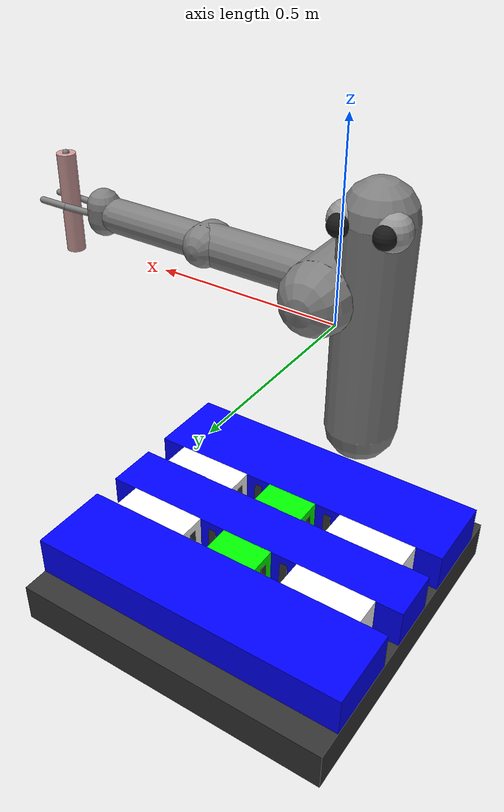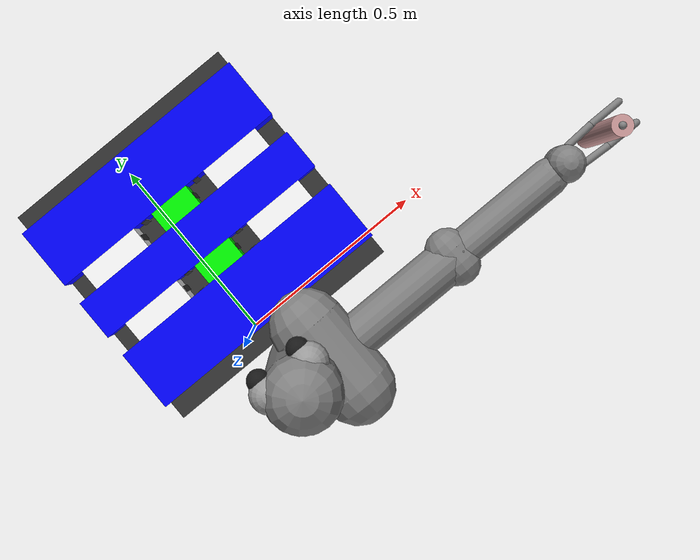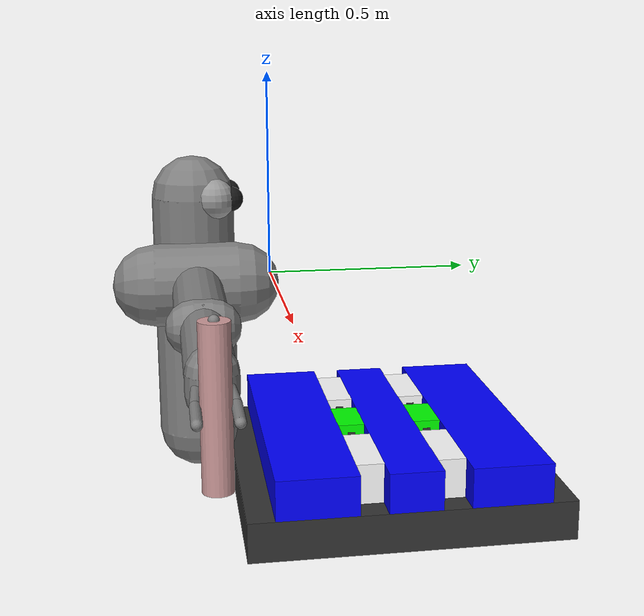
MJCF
<mujoco model="arm3d">

    <compiler inertiafromgeom="true" angle="radian" coordinate="local" />
    <option timestep="0.01" gravity="0 0 0" iterations="20" integrator="RK4" />
    <default>
        <joint armature="0.04" damping="1" limited="true" />
        <geom friction=".5 .1 .1" margin="0.002" condim="1" contype="0" conaffinity="0" />
    </default>

    <worldbody>
        <body name="r_shoulder_pan_link" pos="0 -0.188 0">
            <geom name="e1" type="sphere" rgba="0.6 0.6 0.6 1" pos="-0.06 0.05 0.2" size="0.05" />
            <geom name="e2" type="sphere" rgba="0.6 0.6 0.6 1" pos=" 0.06 0.05 0.2" size="0.05" />
            <geom name="e1p" type="sphere" rgba="0.1 0.1 0.1 1" pos="-0.06 0.09 0.2" size="0.03" />
            <geom name="e2p" type="sphere" rgba="0.1 0.1 0.1 1" pos=" 0.06 0.09 0.2" size="0.03" />
            <geom name="sp" type="capsule" fromto="0 0 -0.4 0 0 0.2" size="0.1" />
            <joint name="r_shoulder_pan_joint" type="hinge" pos="0 0 0" axis="0 0 1" range="-2.2854 1.714602" damping="10.0" />

            <body name="r_shoulder_lift_link" pos="0.1 0 0">
                <geom name="sl" type="capsule" fromto="0 -0.1 0 0 0.1 0" size="0.1" />
                <joint name="r_shoulder_lift_joint" type="hinge" pos="0 0 0" axis="0 1 0" range="-0.5236 1.3963" damping="10.0" />

                <body name="r_upper_arm_roll_link" pos="0 0 0">
                    <geom name="uar" type="capsule" fromto="-0.1 0 0 0.1 0 0" size="0.02" />
                    <joint name="r_upper_arm_roll_joint" type="hinge" pos="0 0 0" axis="1 0 0" range="-3.9 0.8" damping="0.1" />

                    <body name="r_upper_arm_link" pos="0 0 0">
                        <geom name="ua" type="capsule" fromto="0 0 0 0.4 0 0" size="0.06" />

                        <body name="r_elbow_flex_link" pos="0.4 0 0">
                            <geom name="ef" type="capsule" fromto="0 -0.02 0 0.0 0.02 0" size="0.06" />
                            <joint name="r_elbow_flex_joint" type="hinge" pos="0 0 0" axis="0 1 0" range="-2.3213 0" damping="1.0" />

                            <body name="r_forearm_roll_link" pos="0 0 0">
                                <geom name="fr" type="capsule" fromto="-0.1 0 0 0.1 0 0" size="0.02" />
                                <joint name="r_forearm_roll_joint" type="hinge" limited="false" pos="0 0 0" axis="1 0 0" damping=".1" />

                                <body name="r_forearm_link" pos="0 0 0">
                                    <geom name="fa" type="capsule" fromto="0 0 0 0.321 0 0" size="0.05" />

                                    <body name="r_wrist_flex_link" pos="0.321 0 0">
                                        <geom name="wf" type="capsule" fromto="0 -0.02 0 0 0.02 0" size="0.01" />
                                        <joint name="r_wrist_flex_joint" type="hinge" pos="0 0 0" axis="0 1 0" range="-2.094 0" damping=".1" />

                                        <body name="r_wrist_roll_link" pos="0 0 0">
                                            <geom name="wr" type="capsule" fromto="-0.02 0 0 0.02 0 0" size="0.01" />
                                            <joint name="r_wrist_roll_joint" type="hinge" pos="0 0 0" limited="false" axis="1 0 0" damping="0.1" />

                                            <body name="r_gripper_palm_link" pos="0 0 0">
                                                <geom name="pl" type="capsule" fromto="0.05 0 -0.02 0.05 0 0.02" size="0.05" />

                                                <body name="r_gripper_tool_frame" pos="0.18 0 0">
                                                    <site name="leg_bottom" pos="0 0 -0.15" size="0.01" />
                                                    <site name="leg_top" pos="0 0 0.15" size="0.01" />

                                                    <body name="ball" pos="0 0 0">
                                                        <geom name="ball_geom" rgba="0.8 0.6 0.6 1" type="cylinder" fromto="0 0 -0.15 0 0 0.15" size="0.028" density="2000" contype="2" conaffinity="1" />
                                                    </body>
                                                </body>

                                                <body name="r_gripper_l_finger_link" pos="0.07691 0.03 0">
                                                    <geom name="gf3" type="capsule" fromto="0 0 0 0.09137 0.00495 0" size="0.01" />

                                                    <body name="r_gripper_l_finger_tip_link" pos="0.09137 0.00495 0">
                                                        <geom name="gf4" type="capsule" fromto="0 0 0 0.09137 0.0 0" size="0.01" />
                                                    </body>
                                                </body>

                                                <body name="r_gripper_r_finger_link" pos="0.07691 -0.03 0">
                                                    <geom name="gf1" type="capsule" fromto="0 0 0 0.09137 -0.00495 0" size="0.01" />

                                                    <body name="r_gripper_r_finger_tip_link" pos="0.09137 -0.00495 0">
                                                        <geom name="gf2" type="capsule" fromto="0 0 0 0.09137 0.0 0" size="0.01" />
                                                    </body>
                                                </body>
                                            </body>
                                        </body>
                                    </body>
                                </body>
                            </body>
                        </body>
                    </body>
                </body>
            </body>
        </body>

        <body name="toplefthole" pos="-0.1 0.1 0">
          <body name="tlg1" pos="0.034 0.3 -0.47" axisangle="0 1 0 0.05">
              <geom name="tlg1" rgba="0.2 0.2 0.2 1" type="box" size="0.003 0.01 0.05" contype="1" conaffinity="1" />
          </body>

          <body name="tlg2" pos="-0.034 0.3 -0.47" axisangle="0 1 0 -0.05">
              <geom name="tlg2" rgba="0.2 0.2 0.2 1" type="box" size="0.003 0.01 0.05" contype="1" conaffinity="1" />
          </body>

          <body name="tlg3" pos="0.0 0.334 -0.47" axisangle="1 0 0 -0.05">
              <geom name="tlg3" rgba="0.2 0.2 0.2 1" type="box" size="0.01 0.003 0.05" contype="1" conaffinity="1" />
          </body>

          <body name="tlg4" pos="0.0 0.266 -0.47" axisangle="1 0 0 0.05">
              <geom name="tlg4" rgba="0.2 0.2 0.2 1" type="box" size="0.01 0.003 0.05" contype="1" conaffinity="1" />
          </body>
        </body>

        <body name="downlefthole" pos="-0.1 -0.1 0">
          <body name="dlg1" pos="0.034 0.3 -0.47" axisangle="0 1 0 0.05">
              <geom name="dlg1" rgba="0.2 0.2 0.2 1" type="box" size="0.003 0.01 0.05" contype="1" conaffinity="1" />
          </body>

          <body name="dlg2" pos="-0.034 0.3 -0.47" axisangle="0 1 0 -0.05">
              <geom name="dlg2" rgba="0.2 0.2 0.2 1" type="box" size="0.003 0.01 0.05" contype="1" conaffinity="1" />
          </body>

          <body name="dlg3" pos="0.0 0.334 -0.47" axisangle="1 0 0 -0.05">
              <geom name="dlg3" rgba="0.2 0.2 0.2 1" type="box" size="0.01 0.003 0.05" contype="1" conaffinity="1" />
          </body>

          <body name="dlg4" pos="0.0 0.266 -0.47" axisangle="1 0 0 0.05">
              <geom name="dlg4" rgba="0.2 0.2 0.2 1" type="box" size="0.01 0.003 0.05" contype="1" conaffinity="1" />
          </body>
        </body>

        <body name="toprighthole" pos="0.1 0.1 0">
          <body name="trg1" pos="0.034 0.3 -0.47" axisangle="0 1 0 0.05">
              <geom name="trg1" rgba="0.2 0.2 0.2 1" type="box" size="0.003 0.01 0.05" contype="1" conaffinity="1" />
          </body>

          <body name="trg2" pos="-0.034 0.3 -0.47" axisangle="0 1 0 -0.05">
              <geom name="trg2" rgba="0.2 0.2 0.2 1" type="box" size="0.003 0.01 0.05" contype="1" conaffinity="1" />
          </body>

          <body name="trg3" pos="0.0 0.334 -0.47" axisangle="1 0 0 -0.05">
              <geom name="trg3" rgba="0.2 0.2 0.2 1" type="box" size="0.01 0.003 0.05" contype="1" conaffinity="1" />
          </body>

          <body name="trg4" pos="0.0 0.266 -0.47" axisangle="1 0 0 0.05">
              <geom name="trg4" rgba="0.2 0.2 0.2 1" type="box" size="0.01 0.003 0.05" contype="1" conaffinity="1" />
          </body>
        </body>

        <body name="downrighthole" pos="0.1 -0.1 0">
          <body name="drg1" pos="0.034 0.3 -0.47" axisangle="0 1 0 0.05">
              <geom name="drg1" rgba="0.2 0.2 0.2 1" type="box" size="0.003 0.01 0.05" contype="1" conaffinity="1" />
          </body>

          <body name="drg2" pos="-0.034 0.3 -0.47" axisangle="0 1 0 -0.05">
              <geom name="drg2" rgba="0.2 0.2 0.2 1" type="box" size="0.003 0.01 0.05" contype="1" conaffinity="1" />
          </body>

          <body name="drg3" pos="0.0 0.334 -0.47" axisangle="1 0 0 -0.05">
              <geom name="drg3" rgba="0.2 0.2 0.2 1" type="box" size="0.01 0.003 0.05" contype="1" conaffinity="1" />
          </body>

          <body name="drg4" pos="0.0 0.266 -0.47" axisangle="1 0 0 0.05">
              <geom name="drg4" rgba="0.2 0.2 0.2 1" type="box" size="0.01 0.003 0.05" contype="1" conaffinity="1" />
          </body>
        </body>

        <body name="ground" pos="0.0 0.3 -0.55">
    		    <geom name="ground" rgba="0.2 0.2 0.2 1" type="box" size="0.4 0.4 0.05" contype="1" conaffinity="1" />
    		</body>

        <body name="crect1" pos="0.0 0.535 -0.45">
    		    <geom name="crect1" rgba="0 0 1 1" type="box" size="0.4 0.1 0.05" contype="1" conaffinity="1" />
    		</body>
        <body name="crect2" pos="0.0 0.3 -0.45">
    		    <geom name="crect2" rgba="0 0 1 1" type="box" size="0.4 0.066 0.05" contype="1" conaffinity="1" />
    		</body>
        <body name="crect3" pos="0.0 0.066 -0.45">
    		    <geom name="crect3" rgba="0 0 1 1" type="box" size="0.4 0.1 0.05" contype="1" conaffinity="1" />
    		</body>

        <body name="trect1" pos="-0.234 0.4 -0.45">
    		    <geom name="trect1" rgba="1 1 1 1" type="box" size="0.1 0.035 0.05" contype="1" conaffinity="1" />
    		</body>
        <body name="trect2" pos="0 0.4 -0.45">
    		    <geom name="trect2" rgba="0 1 0 1" type="box" size="0.066 0.035 0.05" contype="1" conaffinity="1" />
    		</body>
        <body name="trect3" pos="0.234 0.4 -0.45">
    		    <geom name="trect3" rgba="1 1 1 1" type="box" size="0.1 0.035 0.05" contype="1" conaffinity="1" />
    		</body>

        <body name="drect1" pos="-0.234 0.2 -0.45">
    		    <geom name="drect1" rgba="1 1 1 1" type="box" size="0.1 0.035 0.05" contype="1" conaffinity="1" />
    		</body>
        <body name="drect2" pos="0 0.2 -0.45">
    		    <geom name="drect2" rgba="0 1 0 1" type="box" size="0.066 0.035 0.05" contype="1" conaffinity="1" />
    		</body>
        <body name="drect3" pos="0.234 0.2 -0.45">
    		    <geom name="drect3" rgba="1 1 1 1" type="box" size="0.1 0.035 0.05" contype="1" conaffinity="1" />
    		</body>

    </worldbody>

    <actuator>
        <motor joint="r_shoulder_pan_joint" ctrlrange="-100.0 100.0" ctrllimited="true" />
        <motor joint="r_shoulder_lift_joint" ctrlrange="-100.0 100.0" ctrllimited="true" />
        <motor joint="r_upper_arm_roll_joint" ctrlrange="-100.0 100.0" ctrllimited="true" />
        <motor joint="r_elbow_flex_joint" ctrlrange="-100.0 100.0" ctrllimited="true" />
        <motor joint="r_forearm_roll_joint" ctrlrange="-100.0 100.0" ctrllimited="true" />
        <motor joint="r_wrist_flex_joint" ctrlrange="-100.0 100.0" ctrllimited="true" />
        <motor joint="r_wrist_roll_joint" ctrlrange="-100.0 100.0" ctrllimited="true" />
    </actuator>

</mujoco>
